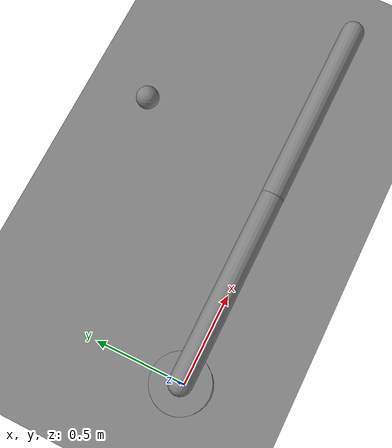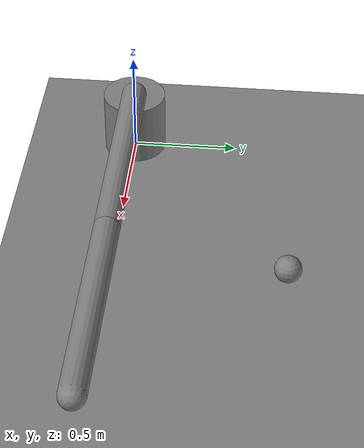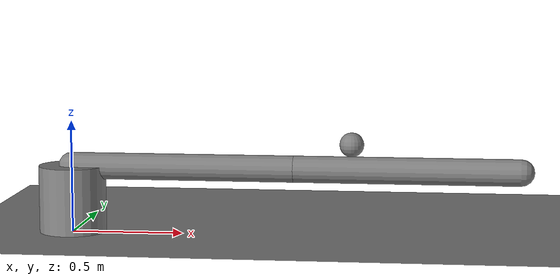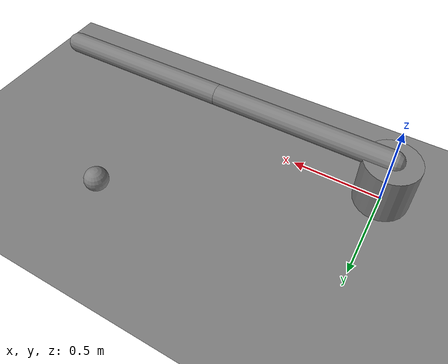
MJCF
<mujoco model="two_link_arm">

    <option timestep="0.002" gravity="0 0 -9.81"/>

    <worldbody>

        <!-- 地面 -->
        <geom
            name="ground"
            type="plane"
            size="5 5 0.1"
        />

        <!-- 基座 -->
        <body name="base" pos="0 0 0.15">

            <geom
                type="cylinder"
                size="0.15 0.15"
            />

            <!-- 第一根机械臂link1 -->
            <body name="link1" pos="0 0 0.15">

                <!-- 旋转关节 -->
                <joint
                    name="joint1"
                    type="hinge"
                    axis="0 0 1"
                    damping="0.1"
                />

                <!-- 连杆 -->
                <geom
                    name="link1_geom"
                    type="capsule"
                    fromto="0 0 0 1 0 0"
                    size="0.06"
                />

                <!-- 第二根机械臂 -->
                <body name="link2" pos="1 0 0">

                    <!-- 旋转关节 -->
                    <joint
                        name="joint2"
                        type="hinge"
                        axis="0 0 1"
                        damping="0.1"
                    />

                    <!-- 连杆 -->
                    <geom
                        name="link2_geom"
                        type="capsule"
                        fromto="0 0 0 1 0 0"
                        size="0.06"
                    />

                </body>

            </body>

        </body>

        <site
            name="target_site"
            pos="1.2 0.8 0.30"
            type="sphere"
            size="0.06"
        />
    </worldbody>

    <contact>
        <exclude body1="base" body2="link1"/>
        <exclude body1="link1" body2="link2"/>
    </contact>

    <actuator>

        <motor
            name="motor1"
            joint="joint1"
            gear="1"
            ctrllimited="true"
            ctrlrange="-20 20"
        />

        <motor
            name="motor2"
            joint="joint2"
            gear="1"
            ctrllimited="true"
            ctrlrange="-20 20"
        />

    </actuator>

</mujoco>
